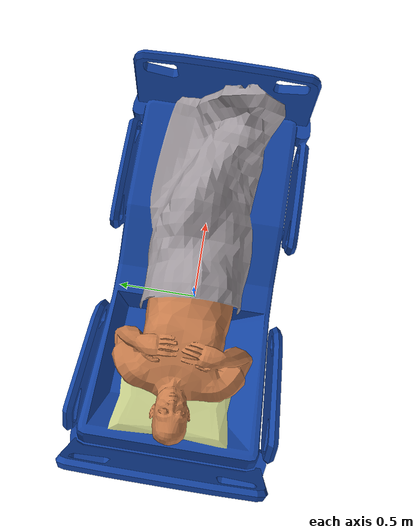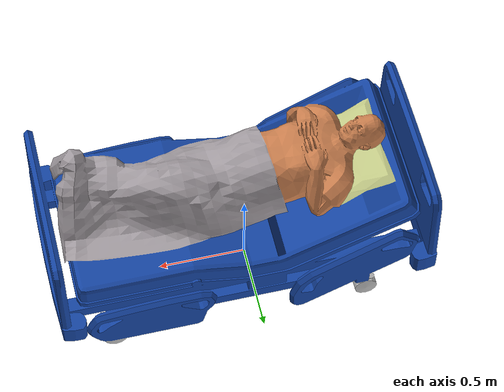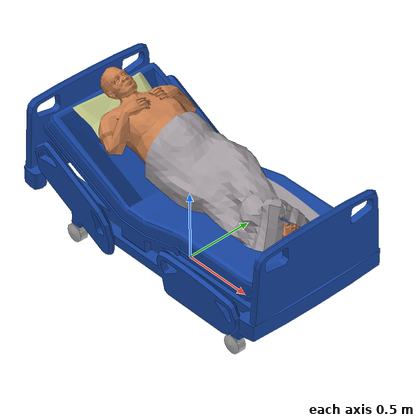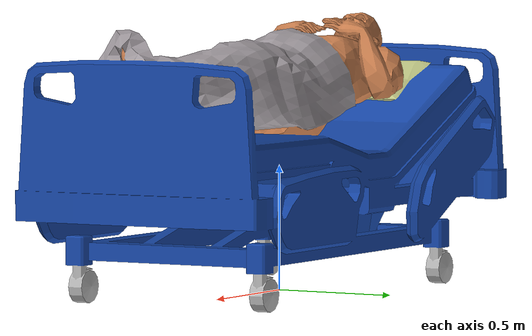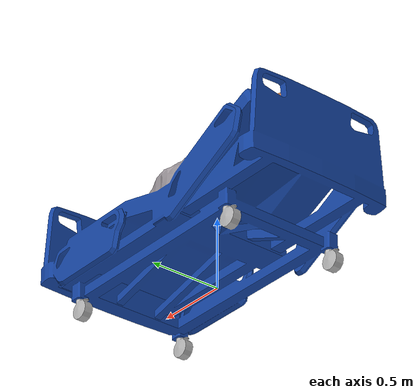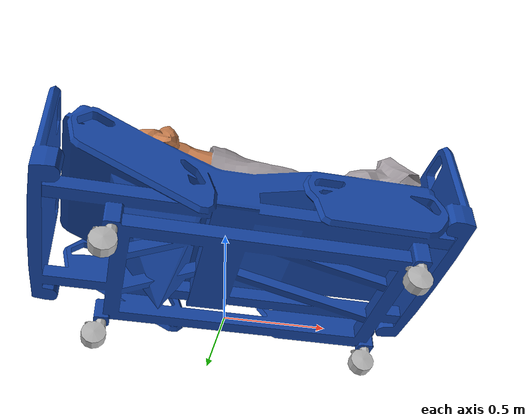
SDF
<?xml version='1.0'?>
<sdf version="1.4">
  <model name="elder_patient">
    <pose>0 0 0 0 0 0</pose>
    <static>false</static>
    <link name="link">
      	<collision name="elder_patient_collision">
        	<geometry>
            <mesh>
                <uri>model://elder_patient/meshes/elder_patient.dae</uri>
            </mesh>
        	</geometry>
      	</collision>
 		<visual name="elder_patient_visual">
   			<geometry>
          <mesh>
              <uri>model://elder_patient/meshes/elder_patient.dae</uri>
          </mesh>
   			</geometry>
 		</visual>
    </link>
  </model>
</sdf>
